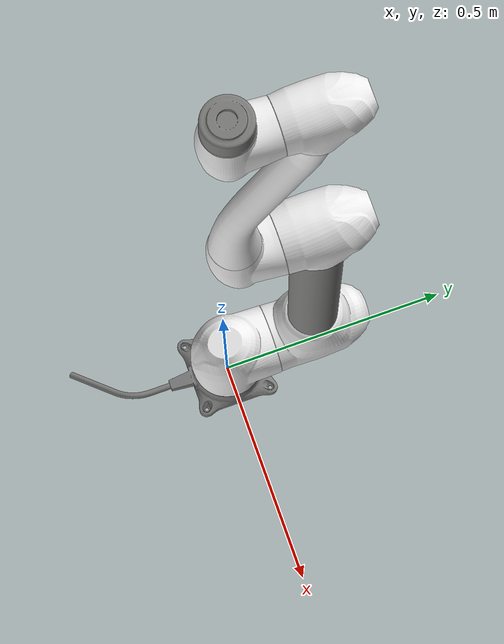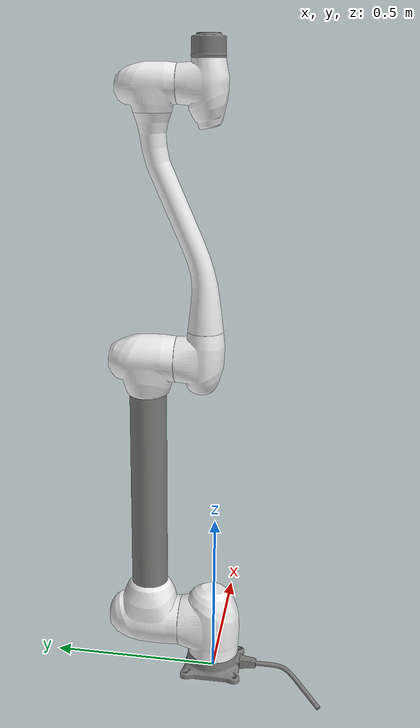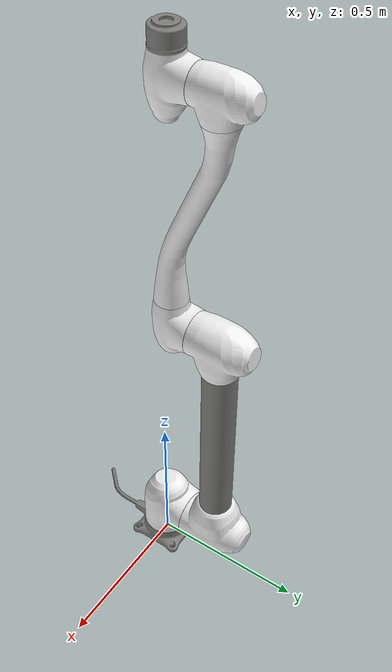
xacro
<?xml version="1.0" ?>

<robot name="m0617" xmlns:xacro="http://ros.org/wiki/xacro">

  <!-- Import all Gazebo-customization elements, including Gazebo colors -->
  <xacro:include filename="$(find dsr_description)/config/doosan_robot.gazebo.xacro" />

  <xacro:include filename="$(find dsr_description)/config/transmission.xacro" />

  <!-- Import Rviz colors -->
  <xacro:include filename="$(find dsr_description)/config/materials.xacro" />

  <!-- World -->
  <link name="world">
  </link>

  <!-- World fixed joint-->
  <joint name="world_fixed" type="fixed">
    <origin xyz="0 0 0" rpy="0 0 0"/>
    <parent link="world"/>
    <child link="base_0"/>
  </joint>

  <link name="base_0">
    <inertial>
      <mass value="3.722"/>
      <origin xyz="-1.2e-05 -6e-05 0.050723"/>
      <inertia ixx="0.011" ixy="-7.19e-06" ixz="-1.94e-06" iyy="0.011" iyz="4.9e-06" izz="0.014"/>
    </inertial>
    <visual>
      <origin rpy="0 0 0" xyz="0 0 0"/>
      <geometry>
        <mesh filename="package://dsr_description/meshes/m0617/MF0617_0_0.stl" scale="0.001 0.001 0.001"/>
      </geometry>
      <material name="dr_gray"/>
    </visual>
  </link>

  <!-- joint 1 -->
  <joint name="joint1" type="revolute">
    <parent link="base_0"/>
    <child link="link1"/>
    <origin rpy="0 0 0" xyz="0 0 0.1525"/>
    <axis xyz="0 0 1"/>
    <limit effort="3460" lower="-6.283" upper="6.283" velocity="2.094"/>
    <dynamics friction="0"/>
  </joint>

  <link name="link1">
	<inertial>
	  <mass value="7.446"/>
	  <origin xyz="7e-05 0.044281 0.143327"/>
      <inertia ixx="0.039" ixy="2.1e-05" ixz="-3.61e-05" iyy="0.023" iyz="-0.003" izz="0.039"/>
    </inertial>
    <visual>
      <origin rpy="0 0 0" xyz="0 0 0"/>
      <geometry>
        <mesh filename="package://dsr_description/meshes/m0617/MF0617_1_0.stl" scale="0.001 0.001 0.001"/>
      </geometry>
      <material name="dr_white"/>
    </visual>
  </link>

  <!-- joint2 -->
  <joint name="joint2" type="revolute">
    <parent link="link1"/>
    <child link="link2"/>
    <origin rpy="0 -1.571 -1.571" xyz="0 0.0345 0"/>
    <axis xyz="0 0 1"/>
    <limit effort="3460" lower="-6.283" upper="6.283" velocity="2.094"/>
    <dynamics friction="0"/>
  </joint>

  <link name="link2">
	<inertial>
	  <mass value="10.569"/>
	  <origin xyz="-1.6e-05 0.189372 0.418558"/>
      <inertia ixx="0.820" ixy="1.19e-05" ixz="-0.000263" iyy="0.82" iyz="-0.008" izz="0.031"/>
    </inertial>
    <visual>
      <origin rpy="0 0 0" xyz="0 0 0"/>
      <geometry>
        <mesh filename="package://dsr_description/meshes/m0617/MF0617_2_0.stl" scale="0.001 0.001 0.001"/>
      </geometry>
      <material name="dr_white"/>
    </visual>
    <visual>
      <origin rpy="0 0 0" xyz="0 0 0"/>
      <geometry>
		<mesh filename="package://dsr_description/meshes/m0617/MF0617_2_1.stl" scale="0.001 0.001 0.001"/>
      </geometry>
      <material name="dr_gray">
        <color rgba="0.490 0.490 0.486 1.0"/>
      </material>
	  </visual>
    <visual>
      <origin rpy="0 0 0" xyz="0 0 0"/>
      <geometry>
		<mesh filename="package://dsr_description/meshes/m0617/MF0617_2_2.stl" scale="0.001 0.001 0.001"/>
      </geometry>
      <material name="dr_white"/>
    </visual>
  </link>

  <!-- joint3 -->
  <joint name="joint3" type="revolute">
    <parent link="link2"/>
    <child link="link3"/>
    <origin rpy="0 0 1.571" xyz="0.845 0 0"/>
    <axis xyz="0 0 1"/>
    <limit effort="1630" lower="-2.793" upper="2.793" velocity="3.142"/>
    <dynamics friction="0"/>
  </joint>

  <link name="link3">
	<inertial>
	  <mass value="3.614"/>
	  <origin xyz="6e-06 0.07917 0.781807"/>
      <inertia ixx="0.012" ixy="-4.38e-06" ixz="-1.2e-06" iyy="0.008" iyz="0.002" izz="0.011"/>
    </inertial>
    <visual>
      <origin rpy="0 0 0" xyz="0 0 0"/>
      <geometry>
		<mesh filename="package://dsr_description/meshes/m0617/MF0617_3_0.stl" scale="0.001 0.001 0.001"/>
      </geometry>
      <material name="dr_white"/>
    </visual>
  </link>

  <!-- joint4 -->
  <joint name="joint4" type="revolute">
    <parent link="link3"/>
    <child link="link4"/>
    <origin rpy="1.571 0 0" xyz="0 -0.734 0"/>
    <axis xyz="0 0 1"/>
    <limit effort="50" lower="-6.283" upper="6.283" velocity="3.927"/>
    <dynamics friction="0"/>
  </joint>

  <link name="link4">
	<inertial>
	  <mass value="3.785"/>
	  <origin xyz="-2.1e-05 0.12337 1.148"/>
      <inertia ixx="0.177" ixy="-2.34e-06" ixz="-4.92e-06" iyy="0.161" iyz="-0.05" izz="0.022"/>
    </inertial>
    <visual>
      <origin rpy="0 0 0" xyz="0 0 0"/>
      <geometry>
		<mesh filename="package://dsr_description/meshes/m0617/MF0617_4_0.stl" scale="0.001 0.001 0.001"/>
      </geometry>
      <material name="dr_white"/>
    </visual>
    <visual>
      <origin rpy="0 0 0" xyz="0 0 0"/>
      <geometry>
		<mesh filename="package://dsr_description/meshes/m0617/MF0617_4_1.stl" scale="0.001 0.001 0.001"/>
      </geometry>
      <material name="dr_white">
        <color rgba="0.941 0.941 0.941 1.0"/>
      </material>
    </visual>
  </link>

  <!-- joint5 -->
  <joint name="joint5" type="revolute">
    <parent link="link4"/>
    <child link="link5"/>
    <origin rpy="-1.571 0 0" xyz="0 0 0"/>
    <axis xyz="0 0 1"/>
    <limit effort="50" lower="-6.283" upper="6.283" velocity="3.927"/>
    <dynamics friction="0"/>
  </joint>

  <link name="link5">
	<inertial>
	  <mass value="2.598"/>
	  <origin xyz="-1.7e-05 0.06662 1.33103"/>
      <inertia ixx="0.007" ixy="-4.93e-06" ixz="-5.57e-06" iyy="0.004" iyz="-6.64e-05" izz="0.007"/>
    </inertial>
    <visual>
      <origin rpy="0 0 0" xyz="0 0 0"/>
      <geometry>
		<mesh filename="package://dsr_description/meshes/m0617/MF0617_5_0.stl" scale="0.001 0.001 0.001"/>
      </geometry>
      <material name="dr_white"/>
    </visual>
  </link>

  <!-- joint6 -->
  <joint name="joint6" type="revolute">
    <parent link="link5"/>
    <child link="link6"/>
    <origin rpy="1.571 0 0" xyz="0 -0.121 0"/>
    <axis xyz="0 0 1"/>
    <limit effort="50" lower="-6.283" upper="6.283" velocity="3.927"/>
    <dynamics friction="0"/>
 </joint>

  <link name="link6">
	<inertial>
	  <mass value="1.128"/>
	  <origin xyz="-0.000174 0.034708 1.40022"/>
      <inertia ixx="0.001" ixy="-2.79e-06" ixz="5.78e-06" iyy="0.001" iyz="-6.67e-06" izz="0.001"/>
    </inertial>
    <visual>
      <origin rpy="0 0 0" xyz="0 0 0"/>
      <geometry>
		<mesh filename="package://dsr_description/meshes/m0617/MF0617_6_0.stl" scale="0.001 0.001 0.001"/>
      </geometry>
      <material name="dr_gray"/>
    </visual>
  </link>

</robot>

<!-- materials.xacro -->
<robot>
  <material name="black">
    <color rgba="0.0 0.0 0.0 1.0"/>
  </material>
  <material name="white">
    <color rgba="1.0 1.0 1.0 1.0"/>
  </material>
  <material name="orange">
    <color rgba="1.0 0.4 0.0 1.0"/>
  </material>

  <material name="dr_gray">
    <color rgba="0.490 0.490 0.486 1.0"/>
  </material>
  <material name="dr_white">
    <color rgba="0.941 0.941 0.941 1.0"/>
  </material>
  <material name="dr_blue">
    <color rgba="0.173 0.235 0.298 1.0"/>
  </material>

</robot>
